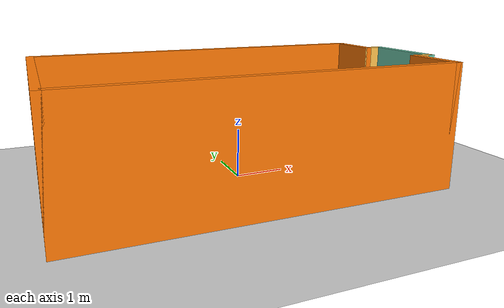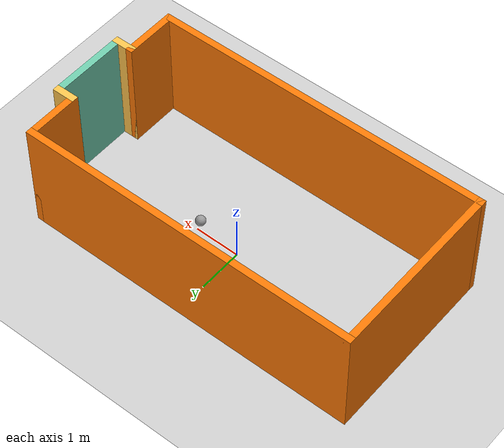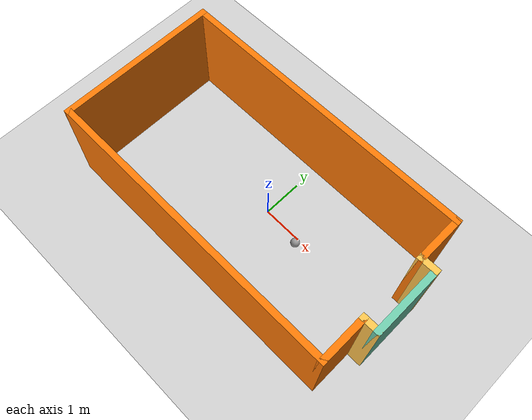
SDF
<sdf version="1.6">
 <world name="default">
  <scene><ambient>0.4 0.4 0.4 1</ambient><background>0.7 0.7 0.7 1</background><shadows>1</shadows></scene>
  <light name="sun" type="directional">
   <pose>0 0 10 0 -0 0</pose>
   <diffuse>0.8 0.8 0.8 1</diffuse>
   <specular>0.1 0.1 0.1 1</specular>
   <attenuation>
    <range>1000</range>
    <constant>0.9</constant>
    <linear>0.01</linear>
    <quadratic>0.001</quadratic>
   </attenuation>
   <direction>-0.5 0.5 -1</direction>
  </light>
  <model name="ground_plane">
   <static>1</static>
   <link name="link">
    <collision name="collision">
     <geometry><plane><normal>0 0 1</normal><size>100 100</size></plane></geometry>
     <surface><friction><ode><mu>100</mu><mu2>50</mu2></ode></friction></surface>
    </collision>
    <visual name="visual">
     <cast_shadows>0</cast_shadows>
     <geometry><plane><normal>0 0 1</normal><size>100 100</size></plane></geometry>
     <material>
      <script><uri>file://media/materials/scripts/gazebo.material</uri><name>Gazebo/Grey</name></script>
     </material>
    </visual>
   </link>
  </model>
  <physics name="default_physics" default="0" type="ode">
   <real_time_update_rate>1000</real_time_update_rate>
   <max_step_size>0.001</max_step_size>
   <real_time_factor>1</real_time_factor>
   <ode>
    <solver>
     <type>quick</type>
     <iters>150</iters>
     <precon_iters>0</precon_iters>
     <sor>1.4</sor>
     <use_dynamic_moi_rescaling>1</use_dynamic_moi_rescaling>
    </solver>
    <constraints>
     <cfm>1e-05</cfm>
     <erp>0.2</erp>
     <contact_max_correcting_vel>2000</contact_max_correcting_vel>
     <contact_surface_layer>0.01</contact_surface_layer>
    </constraints>
   </ode>
  </physics>
  <gravity>0 0 -9.8</gravity>
  <magnetic_field>6e-06 2.3e-05 -4.2e-05</magnetic_field>
  <atmosphere type="adiabatic"/>
  <spherical_coordinates>
   <surface_model>EARTH_WGS84</surface_model>
   <latitude_deg>0</latitude_deg>
   <longitude_deg>0</longitude_deg>
   <elevation>0</elevation>
   <heading_deg>0</heading_deg>
  </spherical_coordinates>
  <model name="teren1poarta">
   <pose>0.002119 -0.253963 0 0 -0 0</pose>
   <link name="Wall_0">
    <collision name="Wall_0_Collision">
     <geometry><box><size>4 0.15 2.5</size></box></geometry>
     <pose>0 0 1.25 0 -0 0</pose>
    </collision>
    <visual name="Wall_0_Visual">
     <pose>0 0 1.25 0 -0 0</pose>
     <geometry><box><size>4 0.15 2.5</size></box></geometry>
     <material>
      <script><uri>file://media/materials/scripts/gazebo.material</uri><name>Gazebo/Grey</name></script>
      <ambient>0.996078 0.47451 0.0196078 1</ambient>
     </material>
    </visual>
    <pose>-3.85 0 0 0 -0 1.5708</pose>
   </link>
   <link name="Wall_11">
    <collision name="Wall_11_Collision">
     <geometry><box><size>7.5 0.15 2.5</size></box></geometry>
     <pose>0 0 1.25 0 -0 0</pose>
    </collision>
    <visual name="Wall_11_Visual">
     <pose>0 0 1.25 0 -0 0</pose>
     <geometry><box><size>7.5 0.15 2.5</size></box></geometry>
     <material>
      <script><uri>file://media/materials/scripts/gazebo.material</uri><name>Gazebo/Grey</name></script>
      <ambient>0.996078 0.47451 0.0196078 1</ambient>
     </material>
    </visual>
    <pose>-0.175 -1.925 0 0 -0 0</pose>
   </link>
   <link name="Wall_12">
    <collision name="Wall_12_Collision">
     <geometry><box><size>1.25 0.15 2.5</size></box></geometry>
     <pose>0 0 1.25 0 -0 0</pose>
    </collision>
    <visual name="Wall_12_Visual">
     <pose>0 0 1.25 0 -0 0</pose>
     <geometry><box><size>1.25 0.15 2.5</size></box></geometry>
     <material>
      <script><uri>file://media/materials/scripts/gazebo.material</uri><name>Gazebo/Grey</name></script>
      <ambient>0.996078 0.47451 0.0196078 1</ambient>
     </material>
    </visual>
    <pose>3.5 -1.375 0 0 -0 1.5708</pose>
   </link>
   <link name="Wall_13">
    <collision name="Wall_13_Collision">
     <geometry><box><size>0.5 0.15 2.5</size></box></geometry>
     <pose>0 0 1.25 0 -0 0</pose>
    </collision>
    <visual name="Wall_13_Visual">
     <pose>0 0 1.25 0 -0 0</pose>
     <geometry><box><size>0.5 0.15 2.5</size></box></geometry>
     <material>
      <script><uri>file://media/materials/scripts/gazebo.material</uri><name>Gazebo/Grey</name></script>
      <ambient>1 0.764706 0.305882 1</ambient>
     </material>
    </visual>
    <pose>3.675 -0.825 0 0 -0 0</pose>
   </link>
   <link name="Wall_14">
    <collision name="Wall_14_Collision">
     <geometry><box><size>1.8 0.15 2.5</size></box></geometry>
     <pose>0 0 1.25 0 -0 0</pose>
    </collision>
    <visual name="Wall_14_Visual">
     <pose>0 0 1.25 0 -0 0</pose>
     <geometry><box><size>1.8 0.15 2.5</size></box></geometry>
     <material>
      <script><uri>file://media/materials/scripts/gazebo.material</uri><name>Gazebo/Grey</name></script>
      <ambient>0.435294 0.796078 0.67451 1</ambient>
     </material>
    </visual>
    <pose>3.85 0 0 0 -0 1.5708</pose>
   </link>
   <link name="Wall_2">
    <collision name="Wall_2_Collision">
     <geometry><box><size>7.5 0.15 2.5</size></box></geometry>
     <pose>0 0 1.25 0 -0 0</pose>
    </collision>
    <visual name="Wall_2_Visual">
     <pose>0 0 1.25 0 -0 0</pose>
     <geometry><box><size>7.5 0.15 2.5</size></box></geometry>
     <material>
      <script><uri>file://media/materials/scripts/gazebo.material</uri><name>Gazebo/Grey</name></script>
      <ambient>0.996078 0.47451 0.0196078 1</ambient>
     </material>
    </visual>
    <pose>-0.175 1.925 0 0 -0 0</pose>
   </link>
   <link name="Wall_8">
    <collision name="Wall_8_Collision">
     <geometry><box><size>1.25 0.15 2.5</size></box></geometry>
     <pose>0 0 1.25 0 -0 0</pose>
    </collision>
    <visual name="Wall_8_Visual">
     <pose>0 0 1.25 0 -0 0</pose>
     <geometry><box><size>1.25 0.15 2.5</size></box></geometry>
     <material>
      <script><uri>file://media/materials/scripts/gazebo.material</uri><name>Gazebo/Grey</name></script>
      <ambient>0.996078 0.47451 0.0196078 1</ambient>
     </material>
    </visual>
    <pose>3.5 1.375 0 0 0 -1.5708</pose>
   </link>
   <link name="Wall_9">
    <collision name="Wall_9_Collision">
     <geometry><box><size>0.5 0.15 2.5</size></box></geometry>
     <pose>0 0 1.25 0 -0 0</pose>
    </collision>
    <visual name="Wall_9_Visual">
     <pose>0 0 1.25 0 -0 0</pose>
     <geometry><box><size>0.5 0.15 2.5</size></box></geometry>
     <material>
      <script><uri>file://media/materials/scripts/gazebo.material</uri><name>Gazebo/Grey</name></script>
      <ambient>1 0.764706 0.305882 1</ambient>
     </material>
    </visual>
    <pose>3.675 0.825 0 0 -0 0</pose>
   </link>
   <static>1</static>
  </model>
  <model name="unit_sphere_0_0_0_0_0_0_0">
   <link name="link">
    <inertial>
     <mass>0.01</mass>
     <inertia><ixx>0.1</ixx><ixy>0</ixy><ixz>0</ixz><iyy>0.1</iyy><iyz>0</iyz><izz>0.1</izz></inertia>
    </inertial>
    <visual name="visual">
     <geometry><sphere><radius>0.110758</radius></sphere></geometry>
     <material>
      <script><name>Gazebo/Grey</name><uri>file://media/materials/scripts/gazebo.material</uri></script>
      <ambient>0.3 0.3 0.3 1</ambient>
      <diffuse>0.7 0.7 0.7 1</diffuse>
      <specular>0.01 0.01 0.01 1</specular>
      <emissive>0 0 0 1</emissive>
      <shader type="vertex"><normal_map>__default__</normal_map></shader>
     </material>
    </visual>
    <collision name="collision">
     <geometry><sphere><radius>0.110758</radius></sphere></geometry>
     <surface>
      <friction>
       <ode><mu>0.0001</mu><mu2>0.0001</mu2><fdir1>0 0 0</fdir1><slip1>0</slip1><slip2>0</slip2></ode>
       <torsional>
        <coefficient>1</coefficient>
        <patch_radius>0.01</patch_radius>
        <surface_radius>0.5</surface_radius>
        <use_patch_radius>1</use_patch_radius>
        <ode><slip>0</slip></ode>
       </torsional>
      </friction>
      <bounce><restitution_coefficient>0</restitution_coefficient><threshold>1e+06</threshold></bounce>
      <contact>
       <collide_without_contact>0</collide_without_contact>
       <collide_without_contact_bitmask>1</collide_without_contact_bitmask>
       <collide_bitmask>1</collide_bitmask>
       <ode>
        <soft_cfm>0</soft_cfm>
        <soft_erp>0.2</soft_erp>
        <kp>1e+13</kp>
        <kd>1</kd>
        <max_vel>0.01</max_vel>
        <min_depth>0</min_depth>
       </ode>
       <bullet>
        <split_impulse>1</split_impulse>
        <split_impulse_penetration_threshold>-0.01</split_impulse_penetration_threshold>
        <soft_cfm>0</soft_cfm>
        <soft_erp>0.2</soft_erp>
        <kp>1e+13</kp>
        <kd>1</kd>
       </bullet>
      </contact>
     </surface>
    </collision>
   </link>
   <static>0</static>
   <pose>1.02326 -0.132836 0.110758 0 -0 0</pose>
  </model>
 </world>
</sdf>
